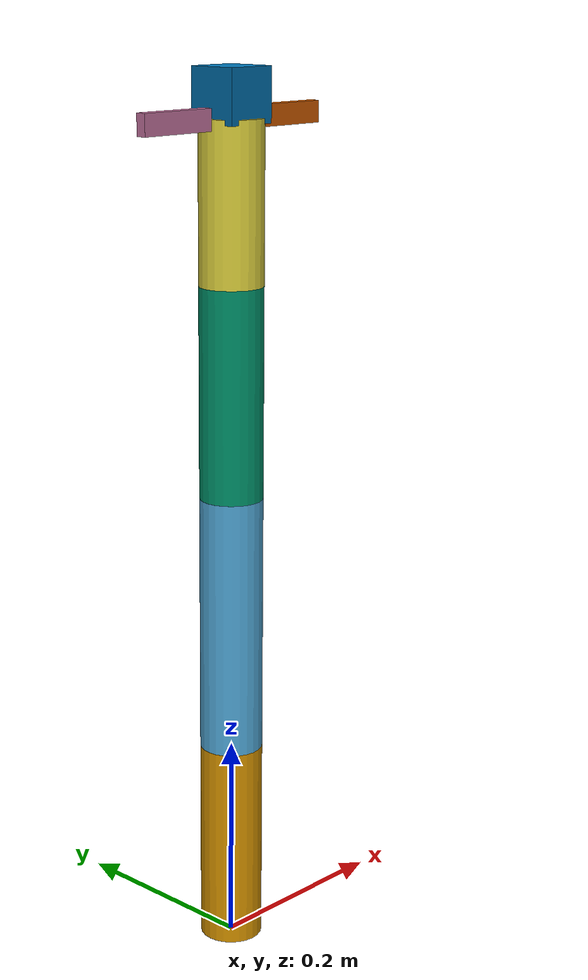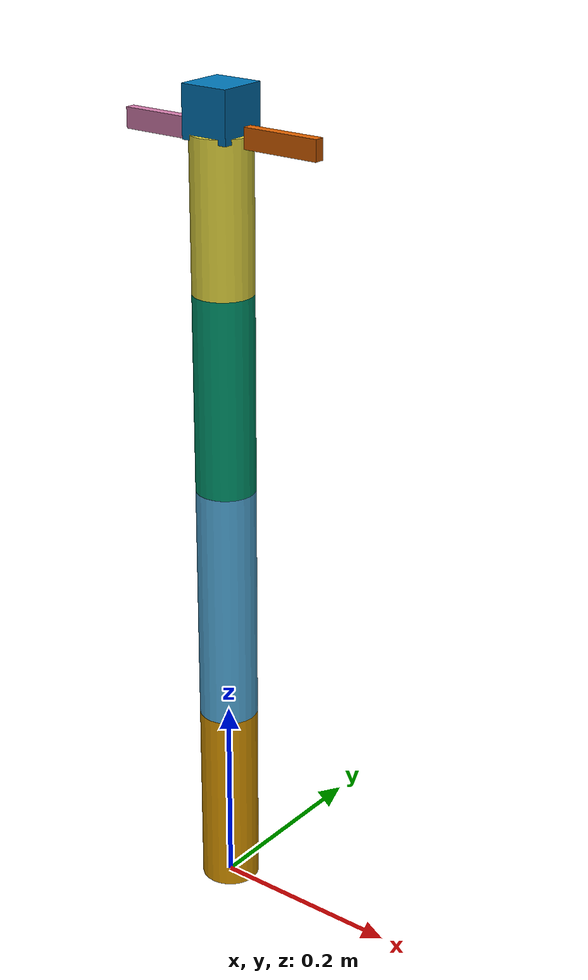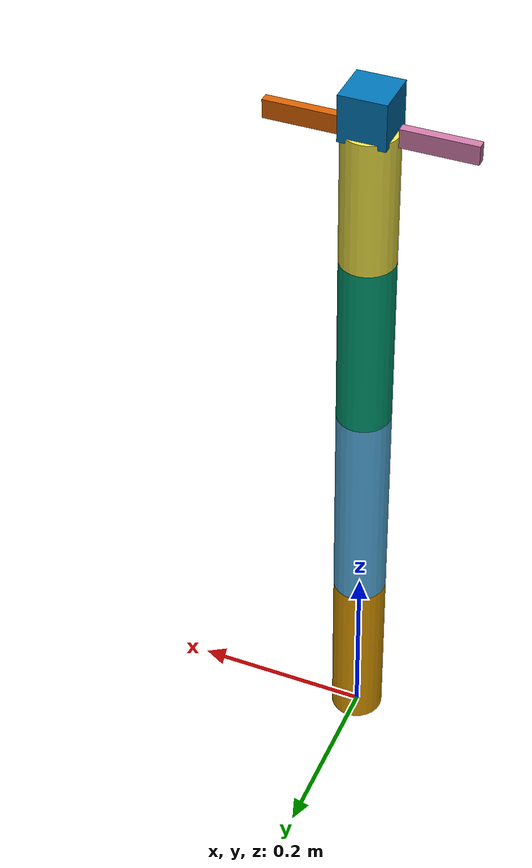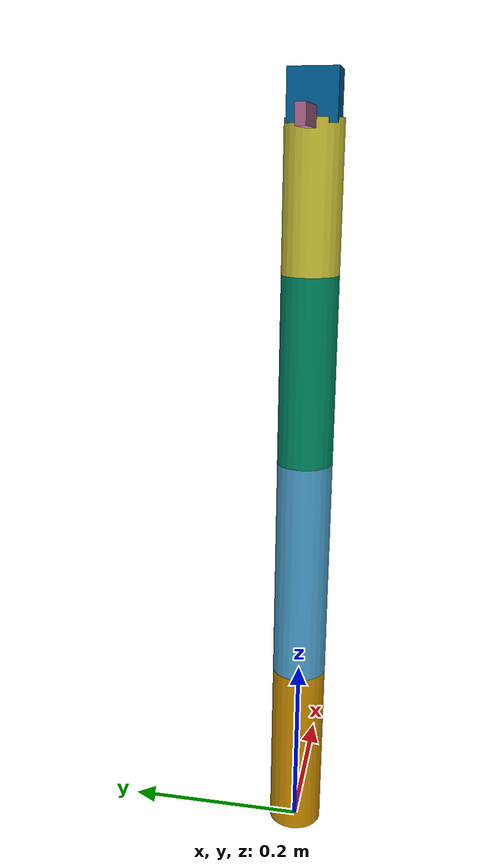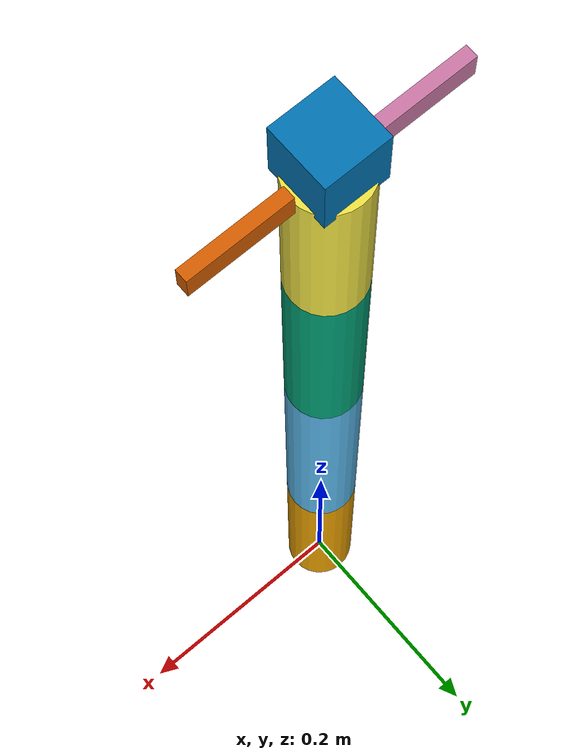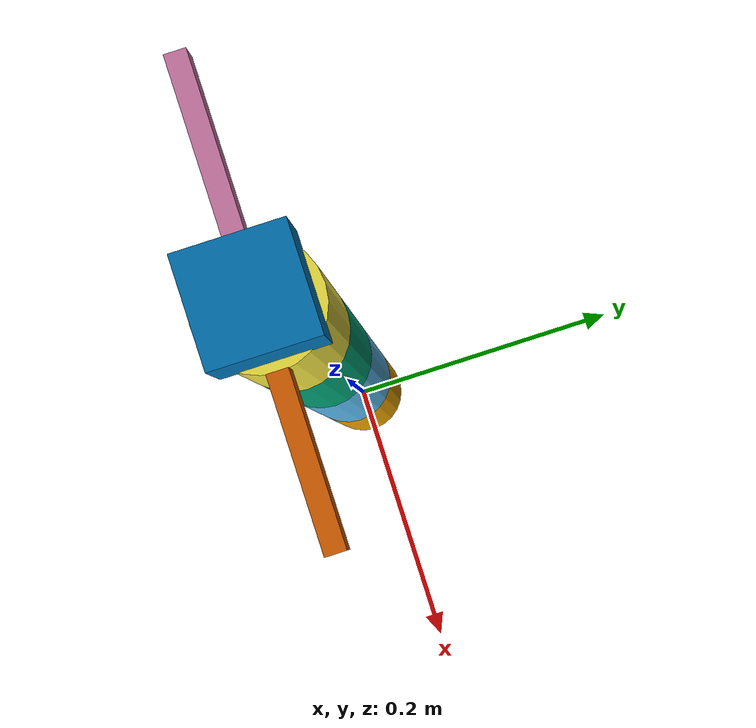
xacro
<?xml version="1.0"?>
<robot name="manipulator" xmlns:xacro="http://www.ros.org/wiki/xacro">

  <!-- Parameters -->
  <xacro:property name="arm_base_height" value="0.2"/>
  <xacro:property name="link_radius" value="0.03"/>
  <xacro:property name="link_length1" value="0.25"/>
  <xacro:property name="link_length2" value="0.20"/>
  <xacro:property name="link_length3" value="0.15"/>
  <xacro:property name="finger_length" value="0.08"/>

  <!-- Base Link -->
  <link name="arm_base_link">
    <visual>
      <origin xyz="0 0 ${arm_base_height/2}"/>
      <geometry>
        <cylinder radius="${link_radius}" length="${arm_base_height}"/>
      </geometry>
    </visual>
  </link>

  <!-- Joint 1 -->
  <joint name="joint1" type="revolute">
    <parent link="arm_base_link"/>
    <child link="link1"/>
    <origin xyz="0 0 ${arm_base_height}"/>
    <axis xyz="0 0 1"/>
    <limit lower="-3.14" upper="3.14" effort="10" velocity="1"/>
  </joint>

  <link name="link1">
    <visual>
      <origin xyz="0 0 ${link_length1/2}"/>
      <geometry>
        <cylinder radius="${link_radius}" length="${link_length1}"/>
      </geometry>
    </visual>
  </link>

  <!-- Joint 2 -->
  <joint name="joint2" type="revolute">
    <parent link="link1"/>
    <child link="link2"/>
    <origin xyz="0 0 ${link_length1}"/>
    <axis xyz="0 1 0"/>
    <limit lower="-1.57" upper="1.57" effort="8" velocity="1"/>
  </joint>

  <link name="link2">
    <visual>
      <origin xyz="0 0 ${link_length2/2}"/>
      <geometry>
        <cylinder radius="${link_radius}" length="${link_length2}"/>
      </geometry>
    </visual>
  </link>

  <!-- Joint 3 -->
  <joint name="joint3" type="revolute">
    <parent link="link2"/>
    <child link="link3"/>
    <origin xyz="0 0 ${link_length2}"/>
    <axis xyz="0 1 0"/>
    <limit lower="-1.57" upper="1.57" effort="8" velocity="1"/>
  </joint>

  <link name="link3">
    <visual>
      <origin xyz="0 0 ${link_length3/2}"/>
      <geometry>
        <cylinder radius="${link_radius}" length="${link_length3}"/>
      </geometry>
    </visual>
  </link>

  <!-- Joint 4 (Wrist) -->
  <joint name="joint4" type="revolute">
    <parent link="link3"/>
    <child link="gripper_mount"/>
    <origin xyz="0 0 ${link_length3}"/>
    <axis xyz="0 0 1"/>
    <limit lower="-1.57" upper="1.57" effort="5" velocity="1"/>
  </joint>

  <link name="gripper_mount">
    <visual>
      <origin xyz="0 0 0.02"/>
      <geometry>
        <box size="0.05 0.05 0.05"/>
      </geometry>
    </visual>
  </link>

  <!-- Gripper -->
  <joint name="left_finger_joint" type="prismatic">
    <parent link="gripper_mount"/>
    <child link="left_finger"/>
    <origin xyz="0.03 0 0"/>
    <axis xyz="1 0 0"/>
    <limit lower="0" upper="0.04" effort="2" velocity="0.2"/>
  </joint>

  <link name="left_finger">
    <visual>
      <origin xyz="${finger_length/2} 0 0"/>
      <geometry>
        <box size="${finger_length} 0.01 0.02"/>
      </geometry>
    </visual>
  </link>

  <joint name="right_finger_joint" type="prismatic">
    <parent link="gripper_mount"/>
    <child link="right_finger"/>
    <origin xyz="-0.03 0 0"/>
    <axis xyz="-1 0 0"/>
    <limit lower="0" upper="0.04" effort="2" velocity="0.2"/>
  </joint>

  <link name="right_finger">
    <visual>
      <origin xyz="-${finger_length/2} 0 0"/>
      <geometry>
        <box size="${finger_length} 0.01 0.02"/>
      </geometry>
    </visual>
  </link>

</robot>
